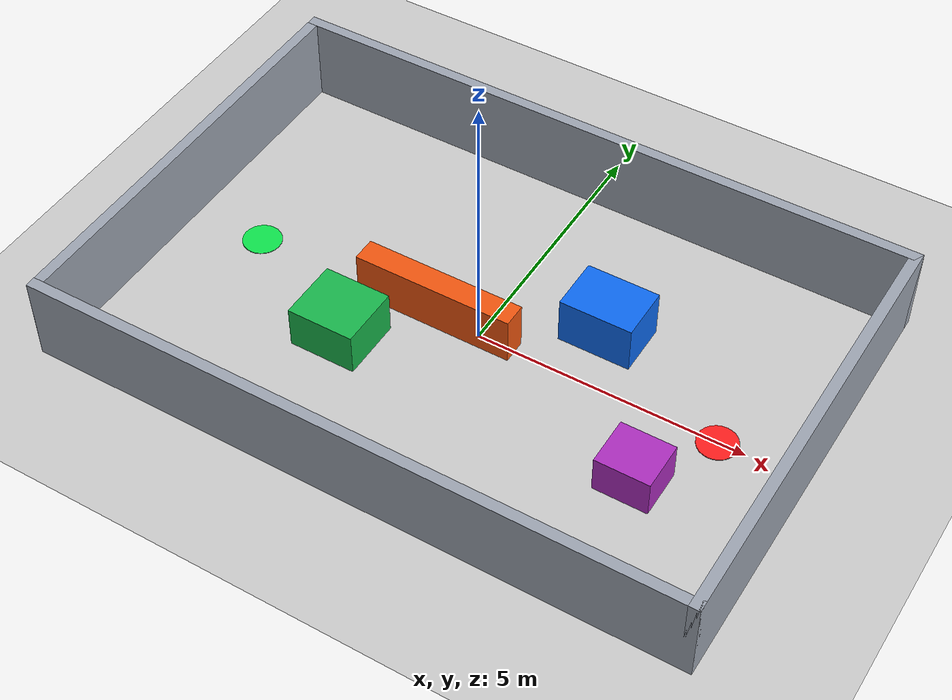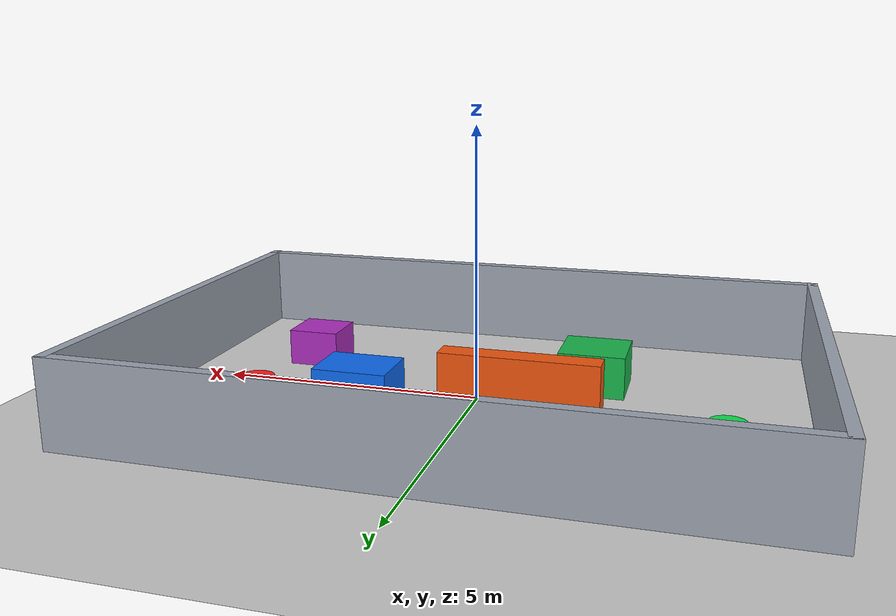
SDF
<?xml version="1.0"?>
<sdf version="1.6">
  <world name="indoor_obstacle_course">
    <include>
      <uri>model://ground_plane</uri>
    </include>

    <include>
      <uri>model://sun</uri>
    </include>

    <scene>
      <ambient>0.65 0.65 0.65 1</ambient>
      <background>0.82 0.86 0.90 1</background>
      <shadows>true</shadows>
      <grid>false</grid>
    </scene>

    <physics type="ode">
      <real_time_update_rate>1000.0</real_time_update_rate>
      <max_step_size>0.001</max_step_size>
      <real_time_factor>1</real_time_factor>
      <ode>
        <solver>
          <type>quick</type>
          <iters>150</iters>
          <sor>1.4</sor>
        </solver>
        <constraints>
          <cfm>0.00001</cfm>
          <erp>0.2</erp>
          <contact_max_correcting_vel>2000</contact_max_correcting_vel>
          <contact_surface_layer>0.01</contact_surface_layer>
        </constraints>
      </ode>
    </physics>

    <!-- A 12 m x 8 m enclosed room. The wall tops are deliberately above
         the camera so the RGB-D sensor only sees the indoor scene. -->
    <model name="wall_north">
      <static>true</static>
      <pose>0 4.0 0.8 0 0 0</pose>
      <link name="link">
        <collision name="collision">
          <geometry><box><size>12.2 0.2 1.6</size></box></geometry>
        </collision>
        <visual name="visual">
          <geometry><box><size>12.2 0.2 1.6</size></box></geometry>
          <material>
            <ambient>0.55 0.58 0.62 1</ambient>
            <diffuse>0.62 0.65 0.70 1</diffuse>
          </material>
        </visual>
      </link>
    </model>

    <model name="wall_south">
      <static>true</static>
      <pose>0 -4.0 0.8 0 0 0</pose>
      <link name="link">
        <collision name="collision">
          <geometry><box><size>12.2 0.2 1.6</size></box></geometry>
        </collision>
        <visual name="visual">
          <geometry><box><size>12.2 0.2 1.6</size></box></geometry>
          <material>
            <ambient>0.55 0.58 0.62 1</ambient>
            <diffuse>0.62 0.65 0.70 1</diffuse>
          </material>
        </visual>
      </link>
    </model>

    <model name="wall_east">
      <static>true</static>
      <pose>6.0 0 0.8 0 0 0</pose>
      <link name="link">
        <collision name="collision">
          <geometry><box><size>0.2 8.2 1.6</size></box></geometry>
        </collision>
        <visual name="visual">
          <geometry><box><size>0.2 8.2 1.6</size></box></geometry>
          <material>
            <ambient>0.55 0.58 0.62 1</ambient>
            <diffuse>0.62 0.65 0.70 1</diffuse>
          </material>
        </visual>
      </link>
    </model>

    <model name="wall_west">
      <static>true</static>
      <pose>-6.0 0 0.8 0 0 0</pose>
      <link name="link">
        <collision name="collision">
          <geometry><box><size>0.2 8.2 1.6</size></box></geometry>
        </collision>
        <visual name="visual">
          <geometry><box><size>0.2 8.2 1.6</size></box></geometry>
          <material>
            <ambient>0.55 0.58 0.62 1</ambient>
            <diffuse>0.62 0.65 0.70 1</diffuse>
          </material>
        </visual>
      </link>
    </model>

    <!-- The central barrier blocks the straight A -> B line. -->
    <model name="barrier_orange">
      <static>true</static>
      <pose>-0.8 0.0 0.45 0 0 0</pose>
      <link name="link">
        <collision name="collision">
          <geometry><box><size>3.0 0.45 0.9</size></box></geometry>
        </collision>
        <visual name="visual">
          <geometry><box><size>3.0 0.45 0.9</size></box></geometry>
          <material>
            <ambient>0.85 0.28 0.05 1</ambient>
            <diffuse>0.95 0.34 0.06 1</diffuse>
          </material>
        </visual>
      </link>
    </model>

    <!-- Offset blocks make the detour visible and prevent a trivial one-turn
         path from looking like an obstacle-free run. -->
    <model name="block_blue">
      <static>true</static>
      <pose>1.85 1.15 0.45 0 0 0</pose>
      <link name="link">
        <collision name="collision">
          <geometry><box><size>1.35 1.0 0.9</size></box></geometry>
        </collision>
        <visual name="visual">
          <geometry><box><size>1.35 1.0 0.9</size></box></geometry>
          <material>
            <ambient>0.04 0.32 0.78 1</ambient>
            <diffuse>0.05 0.42 0.95 1</diffuse>
          </material>
        </visual>
      </link>
    </model>

    <model name="block_green">
      <static>true</static>
      <pose>-2.0 -1.2 0.4 0 0 0</pose>
      <link name="link">
        <collision name="collision">
          <geometry><box><size>1.25 1.15 0.8</size></box></geometry>
        </collision>
        <visual name="visual">
          <geometry><box><size>1.25 1.15 0.8</size></box></geometry>
          <material>
            <ambient>0.08 0.58 0.25 1</ambient>
            <diffuse>0.10 0.72 0.30 1</diffuse>
          </material>
        </visual>
      </link>
    </model>

    <model name="block_purple">
      <static>true</static>
      <pose>3.7 -1.4 0.35 0 0 0</pose>
      <link name="link">
        <collision name="collision">
          <geometry><box><size>1.0 0.9 0.7</size></box></geometry>
        </collision>
        <visual name="visual">
          <geometry><box><size>1.0 0.9 0.7</size></box></geometry>
          <material>
            <ambient>0.52 0.12 0.58 1</ambient>
            <diffuse>0.68 0.18 0.75 1</diffuse>
          </material>
        </visual>
      </link>
    </model>

    <!-- Flat visual-only markers for the documented start and goal. -->
    <model name="start_marker">
      <static>true</static>
      <pose>-4.5 0.0 0.006 0 0 0</pose>
      <link name="link">
        <visual name="visual">
          <geometry><cylinder><radius>0.36</radius><length>0.012</length></cylinder></geometry>
          <material>
            <ambient>0.05 0.75 0.25 1</ambient>
            <diffuse>0.05 0.90 0.30 1</diffuse>
          </material>
        </visual>
      </link>
    </model>

    <model name="goal_marker">
      <static>true</static>
      <pose>4.5 0.0 0.007 0 0 0</pose>
      <link name="link">
        <visual name="visual">
          <geometry><cylinder><radius>0.36</radius><length>0.014</length></cylinder></geometry>
          <material>
            <ambient>0.90 0.08 0.08 1</ambient>
            <diffuse>1.0 0.12 0.12 1</diffuse>
          </material>
        </visual>
      </link>
    </model>

    <gui fullscreen="0">
      <camera name="user_camera">
        <pose>0 0 12.5 0 1.5708 0</pose>
        <view_controller>orbit</view_controller>
        <projection_type>perspective</projection_type>
      </camera>
    </gui>
  </world>
</sdf>
